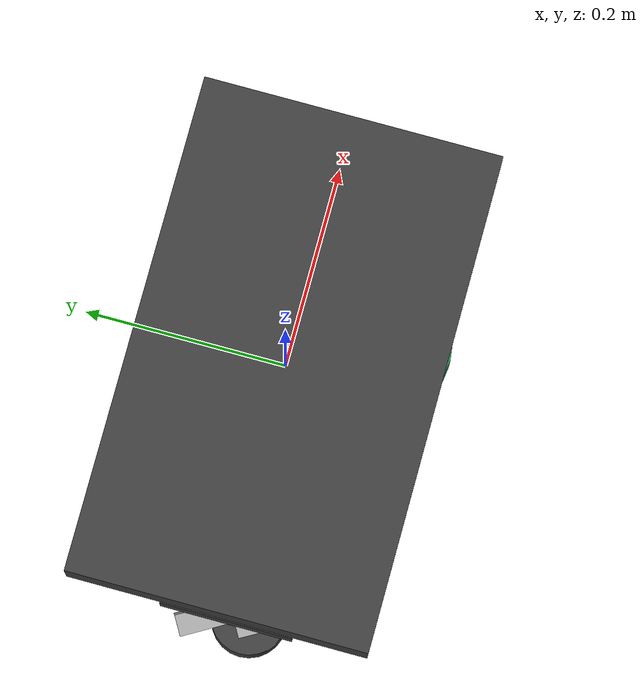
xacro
<?xml version="1.0"?>
<robot name="science_system" xmlns:xacro="http://www.ros.org/wiki/xacro">

  <!-- MATERIALS                                                 -->

  <material name="dark_gray">
    <color rgba="0.25 0.25 0.25 1.0"/>
  </material>

  <material name="light_gray">
    <color rgba="0.70 0.70 0.70 1.0"/>
  </material>

  <material name="black">
    <color rgba="0.10 0.10 0.10 1.0"/>
  </material>

  <material name="blue">
    <color rgba="0.15 0.35 0.75 1.0"/>
  </material>

  <material name="green">
    <color rgba="0.15 0.55 0.30 1.0"/>
  </material>

  <material name="red">
    <color rgba="0.90 0.10 0.10 1.0"/>
  </material>

  <material name="yellow">
    <color rgba="1.0 0.80 0.05 1.0"/>
  </material>

  <material name="beaker_glass">
    <color rgba="0.80 0.90 1.0 0.75"/>
  </material>

  <!-- FIXED BASE                                                -->

  <link name="base_link">

    <!-- Upper mounting plate -->
    <visual>
      <origin xyz="0 0 0" rpy="0 0 0"/>
      <geometry>
        <box size="0.50 0.30 0.05"/>
      </geometry>
      <material name="dark_gray"/>
    </visual>

    <!-- Fixed linear actuator housing -->
    <visual>
      <origin xyz="-0.16 0 -0.125" rpy="0 0 0"/>
      <geometry>
        <cylinder radius="0.04" length="0.20"/>
      </geometry>
      <material name="black"/>
    </visual>

    <!-- Fixed vertical support for the beaker tray -->
    <visual>
      <origin xyz="0.16 0 -0.33" rpy="0 0 0"/>
      <geometry>
        <box size="0.05 0.05 0.60"/>
      </geometry>
      <material name="dark_gray"/>
    </visual>

    <!-- Fixed servo housing near the tray -->
    <visual>
      <origin xyz="0.16 0 -0.61" rpy="0 0 0"/>
      <geometry>
        <box size="0.10 0.08 0.08"/>
      </geometry>
      <material name="black"/>
    </visual>

  </link>

  <!-- MOVING AUGER CARRIAGE                                     -->

  <!--
    This link moves vertically with the linear actuator.

    Only the auger assembly is attached to this link.
    The beaker tray is not attached to this link.
  -->
  <link name="auger_carriage_link">

    <!-- Moving actuator rod -->
    <visual>
      <origin xyz="0 0 0.10" rpy="0 0 0"/>
      <geometry>
        <cylinder radius="0.02" length="0.25"/>
      </geometry>
      <material name="light_gray"/>
    </visual>

    <!-- Auger motor housing -->
    <visual>
      <origin xyz="0 0 -0.08" rpy="0 0 0"/>
      <geometry>
        <cylinder radius="0.06" length="0.12"/>
      </geometry>
      <material name="blue"/>
    </visual>

    <!-- Motor mounting plate -->
    <visual>
      <origin xyz="0 0 -0.015" rpy="0 0 0"/>
      <geometry>
        <box size="0.14 0.14 0.03"/>
      </geometry>
      <material name="dark_gray"/>
    </visual>

  </link>

  <!-- ROTATING AUGER                                            -->

  <link name="auger_link">

    <!-- Main auger shaft -->
    <visual>
      <origin xyz="0 0 -0.24" rpy="0 0 0"/>
      <geometry>
        <cylinder radius="0.018" length="0.48"/>
      </geometry>
      <material name="light_gray"/>
    </visual>

    <!--
      Asymmetric red marker.

      A plain cylinder looks unchanged while rotating.
      This marker makes auger rotation visible in RViz.
    -->
    <visual>
      <origin xyz="0.055 0 -0.07" rpy="0 0 0"/>
      <geometry>
        <box size="0.11 0.025 0.025"/>
      </geometry>
      <material name="red"/>
    </visual>

    <!-- Upper auger blade -->
    <visual>
      <origin xyz="0.035 0 -0.16" rpy="0.25 0 0.55"/>
      <geometry>
        <box size="0.10 0.025 0.018"/>
      </geometry>
      <material name="light_gray"/>
    </visual>

    <!-- Middle auger blade -->
    <visual>
      <origin xyz="-0.025 0.025 -0.27" rpy="-0.25 0 2.10"/>
      <geometry>
        <box size="0.10 0.025 0.018"/>
      </geometry>
      <material name="light_gray"/>
    </visual>

    <!-- Lower auger blade -->
    <visual>
      <origin xyz="0 -0.035 -0.38" rpy="0.25 0 -1.05"/>
      <geometry>
        <box size="0.10 0.025 0.018"/>
      </geometry>
      <material name="light_gray"/>
    </visual>

    <!-- Drill tip -->
    <visual>
      <origin xyz="0 0 -0.50" rpy="0 0 0"/>
      <geometry>
        <cylinder radius="0.045" length="0.04"/>
      </geometry>
      <material name="dark_gray"/>
    </visual>

  </link>

  <!-- FIXED-HEIGHT ROTATING BEAKER TRAY                          -->

  <!--
    The tray rotates but does not move vertically.

    Its joint is connected directly to base_link rather than
    auger_carriage_link.
  -->
  <link name="beaker_tray_link">

    <!-- Circular tray -->
    <visual>
      <origin xyz="0 0 -0.025" rpy="0 0 0"/>
      <geometry>
        <cylinder radius="0.15" length="0.05"/>
      </geometry>
      <material name="green"/>
    </visual>

    <!-- Tray direction marker -->
    <visual>
      <origin xyz="0.10 0 0.01" rpy="0 0 0"/>
      <geometry>
        <box size="0.10 0.018 0.018"/>
      </geometry>
      <material name="yellow"/>
    </visual>

    <!-- Beaker at 0 degrees -->
    <visual>
      <origin xyz="0.10 0 0.065" rpy="0 0 0"/>
      <geometry>
        <cylinder radius="0.025" length="0.11"/>
      </geometry>
      <material name="beaker_glass"/>
    </visual>

    <!-- Beaker at 90 degrees -->
    <visual>
      <origin xyz="0 0.10 0.065" rpy="0 0 0"/>
      <geometry>
        <cylinder radius="0.025" length="0.11"/>
      </geometry>
      <material name="beaker_glass"/>
    </visual>

    <!-- Beaker at 180 degrees -->
    <visual>
      <origin xyz="-0.10 0 0.065" rpy="0 0 0"/>
      <geometry>
        <cylinder radius="0.025" length="0.11"/>
      </geometry>
      <material name="beaker_glass"/>
    </visual>

  </link>

  <!-- JOINTS                                                    -->

  <joint name="science_lift_joint" type="prismatic">
    <parent link="base_link"/>
    <child link="auger_carriage_link"/>

    <origin xyz="-0.16 0 -0.25" rpy="0 0 0"/>
    <axis xyz="0 0 1"/>

    <limit
      lower="-1.0"
      upper="1.0"
      effort="1000.0"
      velocity="1.0"/>
  </joint>

  <!--
    Continuous Phidget stepper rotation.

    The red marker and uneven blades make rotation visible in RViz.
  -->
  <joint name="auger_spin_joint" type="continuous">
    <parent link="auger_carriage_link"/>
    <child link="auger_link"/>

    <origin xyz="0 0 -0.14" rpy="0 0 0"/>
    <axis xyz="0 0 1"/>
  </joint>

  <!--
    Beaker tray remains at a fixed height and only rotates.

    Intended servo positions:
      0 degrees   = 0.0 radians
      90 degrees  = 1.5708 radians
      180 degrees = 3.14159 radians
  -->
  <joint name="beaker_tray_joint" type="continuous">
    <parent link="base_link"/>
    <child link="beaker_tray_link"/>

    <!-- Positioned near the bottom level of the lowered auger -->
    <origin xyz="0.16 0 -0.65" rpy="0 0 0"/>
    <axis xyz="0 0 1"/>
  </joint>

  <!-- ROS 2 CONTROL                                             -->

  <ros2_control name="ScienceHardware" type="system">

    <hardware>
      <plugin>science_2026/Science2026System</plugin>
    </hardware>

    <!-- Linear actuator up and down -->
    <joint name="science_lift_joint">
      <command_interface name="velocity"/>
      <state_interface name="position"/>
    </joint>

    <!-- Continuous auger rotation -->
    <joint name="auger_spin_joint">
      <command_interface name="velocity"/>
      <state_interface name="position"/>
    </joint>

    <!-- Servo tray position -->
    <joint name="beaker_tray_joint">
      <command_interface name="position"/>
      <state_interface name="position"/>
    </joint>

  </ros2_control>

</robot>
